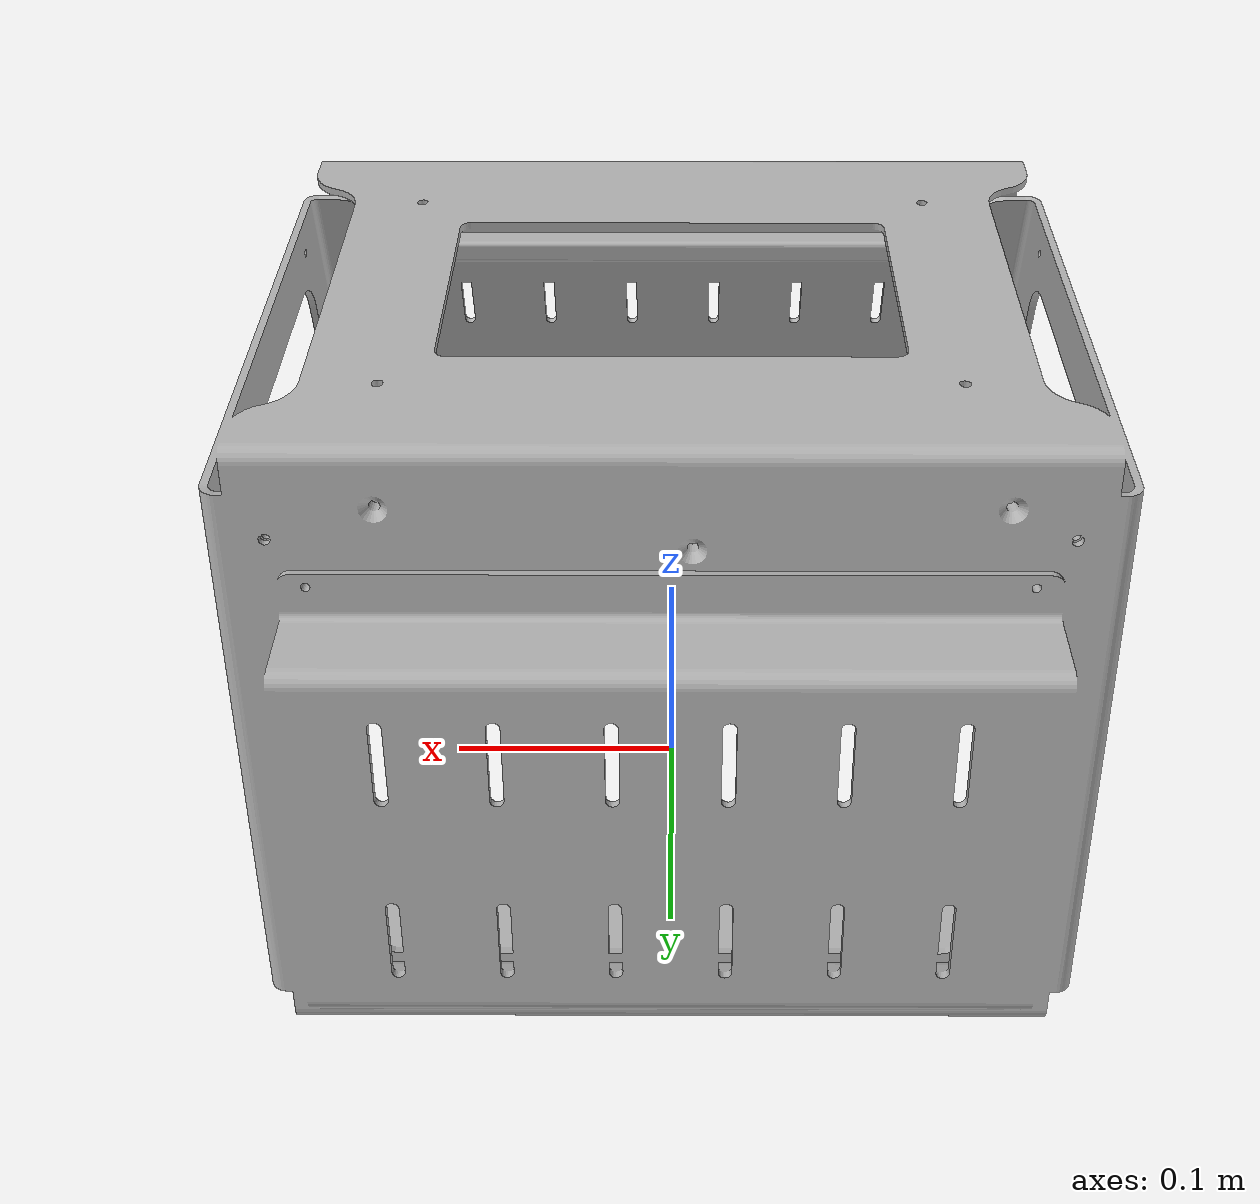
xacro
<?xml version="1.0"?>
<robot name="ugv_devkit_v1.1" xmlns:xacro="http://www.ros.org/wiki/xacro">

  <xacro:include filename="$(find ugv_devkit_bringup)/urdf/chassis_macro.urdf.xacro" />

  <xacro:arg name="chassis_ext" default="false" />

  <material name="silver">
    <color rgba="0.700 0.700 0.700 1.000"/>
  </material>

  <link name="ugv_devkit_base_link"></link>

  <xacro:extension_kit use_chassis_extension="$(arg chassis_ext)"
    parent_link="ugv_devkit_base_link">
    <origin xyz="0 0 0" rpy="0 0 0"/>
  </xacro:extension_kit>

</robot>

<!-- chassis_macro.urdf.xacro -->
<robot name="ugv_devkit_v1.1" xmlns:xacro="http://www.ros.org/wiki/xacro">

    <xacro:macro name="extension_kit" params="use_chassis_extension parent_link *origin">
       <xacro:arg name="use_nominal_extrinsics" default="false"/>
       <xacro:property name="chassis_joint_z" value="0"/>
       <xacro:property name="chassis_joint_parent_link" value="${parent_link}"/>

       <xacro:property name="M_PI" value="3.1415926535897931" />

       <xacro:if value="${use_chassis_extension}">
        <link name="ugv_devkit_v1.1_chassis_extension_link">
            <inertial>
                <origin xyz="0 0 0.115" rpy="0 0 ${M_PI/2}" />
                <mass value="0.1" />
                <inertia ixx="0.0001" iyy="0.0001" izz="0.0001" ixy="0" iyz="0"
                    ixz="0" />
            </inertial>
            <visual>
                <origin xyz="0 0 0.115" rpy="0 0 ${M_PI/2}" />
                <geometry>
                    <mesh filename="package://ugv_devkit_bringup/meshes/ugv_devkit_v1.1_chassis_extension_link.stl"
                    scale="0.001 0.001 0.001" />
                </geometry>
                <material name="silver" />
            </visual>
            <collision>
                <origin xyz="0 0 0.115" rpy="0 0 ${M_PI/2}" />
                <geometry>
                    <mesh filename="package://ugv_devkit_bringup/meshes/ugv_devkit_v1.1_chassis_extension_link.stl"
                    scale="0.001 0.001 0.001" />
                </geometry>
            </collision>
        </link>

        <joint name="chassis_extension_joint" type="fixed">
            <origin xyz="0 0 0" rpy="0 0 0" />
            <parent link="${parent_link}" />
            <child link="ugv_devkit_v1.1_chassis_extension_link" />
        </joint>

        <xacro:property name="chassis_joint_z" value="0.115" />
        <xacro:property name="chassis_joint_parent_link" value="ugv_devkit_v1.1_chassis_extension_link" />
       </xacro:if>

       <link name="ugv_devkit_v1.1_chassis_link">
            <inertial>
                <origin xyz="0 0 0" rpy="0 0 ${M_PI/2}" />
                <mass value="10.733504865991039" />
                <inertia ixx="0.167434" iyy="0.148852" izz="0.213349" ixy="0.000228" iyz="-0.000808" ixz="0.000348" />
            </inertial>
            <visual>
                <origin xyz="0 0 0" rpy="0 0 ${M_PI/2}" />
                <geometry>
                    <mesh filename="package://ugv_devkit_bringup/meshes/ugv_devkit_v1.1_chassis_link.stl"
                    scale="0.001 0.001 0.001" />
                </geometry>
                <material name="silver" />
            </visual>
            <collision>
                <origin xyz="0 0 0" rpy="0 0 ${M_PI/2}" />
                <geometry>
                    <mesh filename="package://ugv_devkit_bringup/meshes/ugv_devkit_v1.1_chassis_link.stl"
                    scale="0.001 0.001 0.001" />
                </geometry>
            </collision>
        </link>

        <joint name="chassis_joint" type="fixed">
            <origin xyz="0 0 ${chassis_joint_z}" rpy="0 0 0" />
            <parent link="${chassis_joint_parent_link}" />
            <child link="ugv_devkit_v1.1_chassis_link" />
        </joint>

        <!-- The links and joints below are used by the sensor kits and are recommended not to be renamed/removed-->
        <link name="top_sensor_kit_link"/>
        <link name="front_sensor_kit_link"/>
        <link name="rear_sensor_kit_link"/>
        <link name="left_sensor_kit_link"/>
        <link name="right_sensor_kit_link"/>

        <joint name="top_joint" type="fixed">
            <origin xyz="0.0 0.0 0.253" rpy="0 0 0" />
            <parent link="ugv_devkit_v1.1_chassis_link" />
            <child link="top_sensor_kit_link" />
        </joint>

        <joint name="front_joint" type="fixed">
            <origin xyz="0.0 0.0 0.0" rpy="0 0 0" />
            <parent link="ugv_devkit_v1.1_chassis_link" />
            <child link="front_sensor_kit_link" />
        </joint>

        <joint name="rear_joint" type="fixed">
            <origin xyz="0.0 0.0 0.0" rpy="0 0 0" />
            <parent link="ugv_devkit_v1.1_chassis_link" />
            <child link="rear_sensor_kit_link" />
        </joint>

        <joint name="left_joint" type="fixed">
            <origin xyz="0.0 0.0 0.0" rpy="0 0 0" />
            <parent link="ugv_devkit_v1.1_chassis_link" />
            <child link="left_sensor_kit_link" />
        </joint>

        <joint name="right_joint" type="fixed">
            <origin xyz="0.0 0.0 0.0" rpy="0 0 0" />
            <parent link="ugv_devkit_v1.1_chassis_link" />
            <child link="right_sensor_kit_link" />
        </joint>
    </xacro:macro>

</robot>
